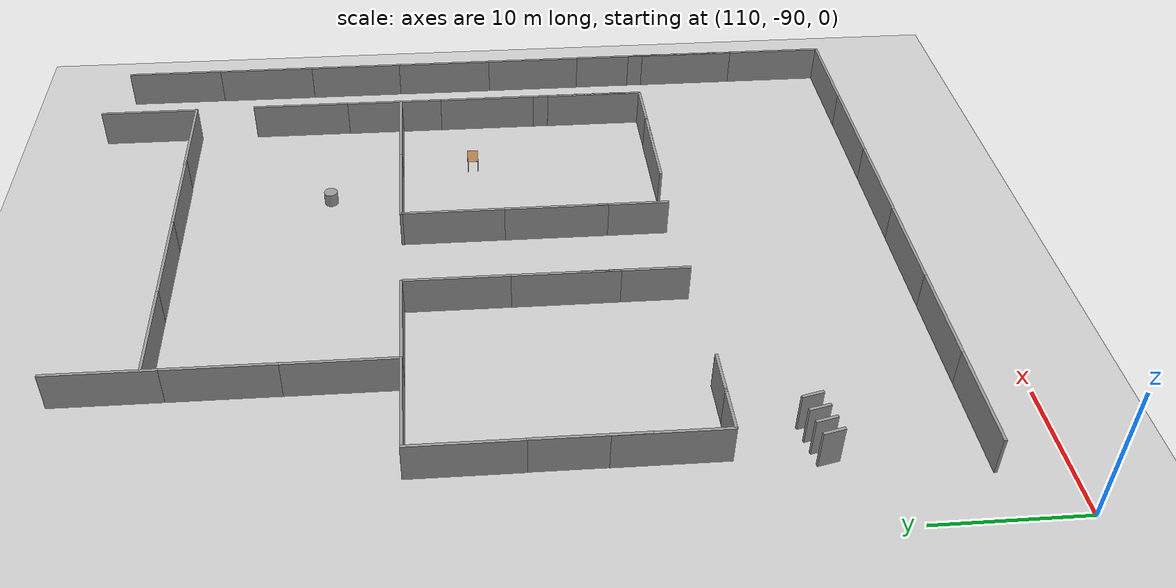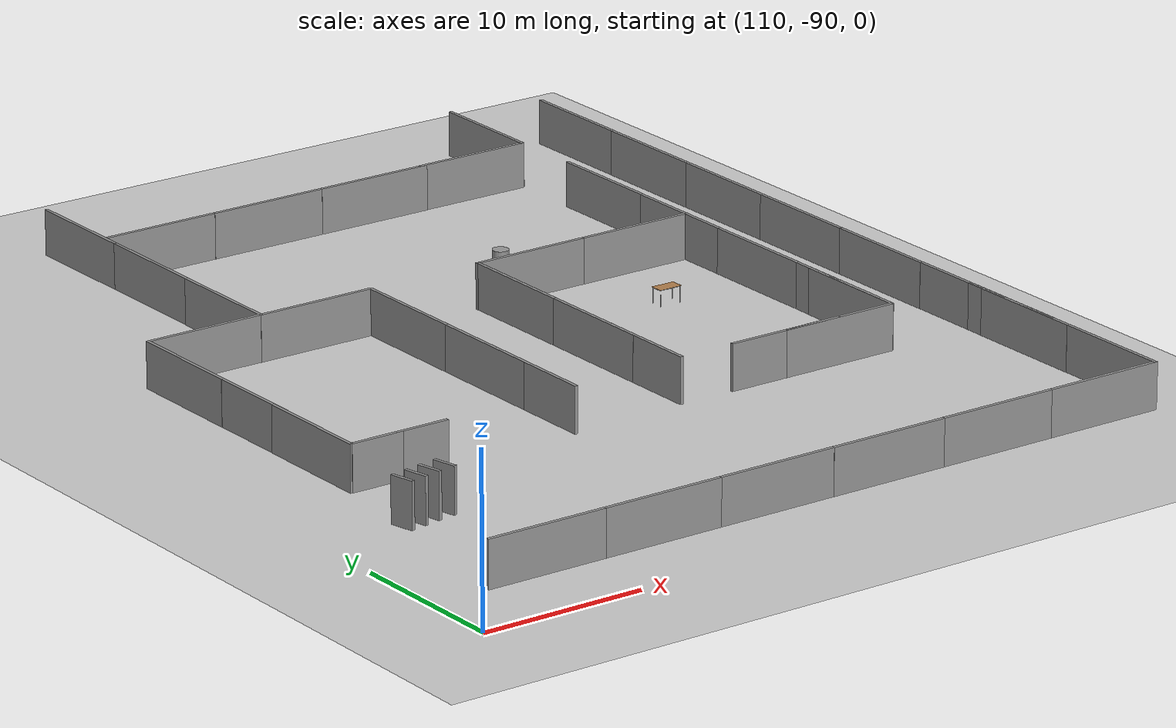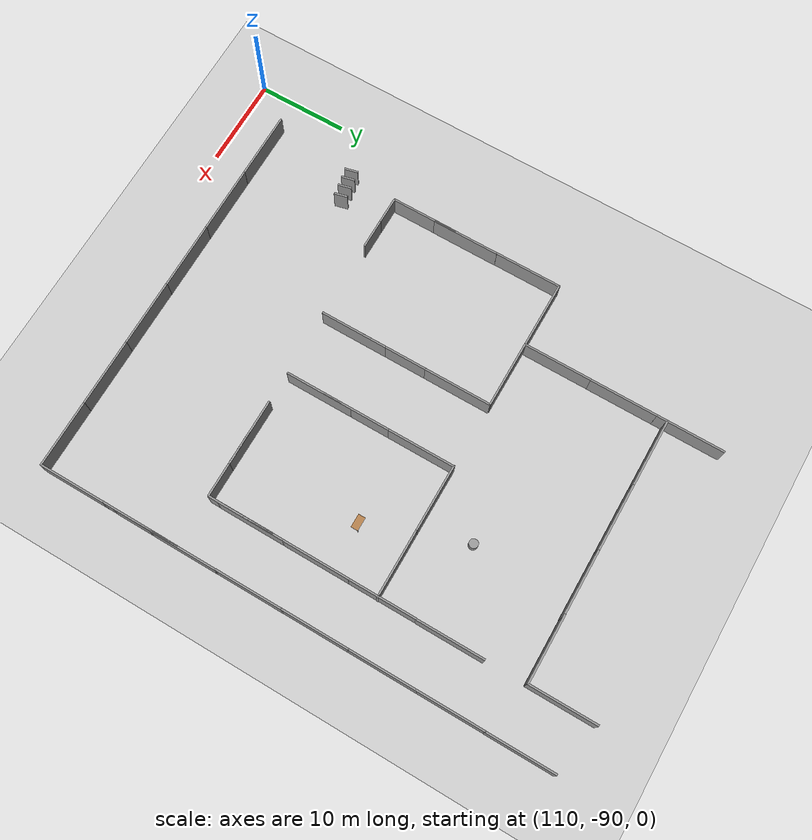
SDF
<sdf version="1.7">
 <world name="default">
  <model name="ground_plane">
   <static>1</static>
   <link name="link">
    <collision name="collision">
     <geometry><plane><normal>0 0 1</normal><size>100 100</size></plane></geometry>
     <surface>
      <contact><collide_bitmask>65535</collide_bitmask></contact>
      <friction><ode><mu>100</mu><mu2>50</mu2></ode></friction>
     </surface>
    </collision>
    <visual name="visual">
     <cast_shadows>0</cast_shadows>
     <geometry><plane><normal>0 0 1</normal><size>100 100</size></plane></geometry>
     <material>
      <script><uri>file://media/materials/scripts/gazebo.material</uri><name>Gazebo/Grey</name></script>
     </material>
    </visual>
   </link>
  </model>
  <model name="grey_wall_clone_2_clone_clone_clone_1_clone_clone_0_clone_1_clone_clone_clone_clone_clone_2_clone_clone_4_clone_1_clone">
   <static>1</static>
   <link name="link">
    <pose>0 0 1.4 0 -0 0</pose>
    <collision name="collision"><geometry><box><size>7.5 0.2 2.8</size></box></geometry></collision>
    <visual name="visual">
     <cast_shadows>0</cast_shadows>
     <geometry><box><size>7.5 0.2 2.8</size></box></geometry>
     <material>
      <script>
       <uri>model://grey_wall/materials/scripts</uri>
       <uri>model://grey_wall/materials/textures</uri>
       <name>vrc/grey_wall</name>
      </script>
     </material>
    </visual>
   </link>
   <pose>115.75 -53.734 0 0 0 -1.5708</pose>
  </model>
  <model name="grey_wall_clone_2_clone_clone_clone_1_clone_clone_0_clone_1_clone_clone_clone_clone_clone_2_clone_clone_4_clone_1_clone_0">
   <static>1</static>
   <link name="link">
    <pose>0 0 1.4 0 -0 0</pose>
    <collision name="collision"><geometry><box><size>7.5 0.2 2.8</size></box></geometry></collision>
    <visual name="visual">
     <cast_shadows>0</cast_shadows>
     <geometry><box><size>7.5 0.2 2.8</size></box></geometry>
     <material>
      <script>
       <uri>model://grey_wall/materials/scripts</uri>
       <uri>model://grey_wall/materials/textures</uri>
       <name>vrc/grey_wall</name>
      </script>
     </material>
    </visual>
   </link>
   <pose>115.771 -61.1567 0 0 0 -1.5708</pose>
  </model>
  <model name="grey_wall_clone_2_clone_clone_clone_1_clone_clone_0_clone_1_clone_clone_clone_clone_clone_2_clone_clone_4_clone_1_clone_1">
   <static>1</static>
   <link name="link">
    <pose>0 0 1.4 0 -0 0</pose>
    <collision name="collision"><geometry><box><size>7.5 0.2 2.8</size></box></geometry></collision>
    <visual name="visual">
     <cast_shadows>0</cast_shadows>
     <geometry><box><size>7.5 0.2 2.8</size></box></geometry>
     <material>
      <script>
       <uri>model://grey_wall/materials/scripts</uri>
       <uri>model://grey_wall/materials/textures</uri>
       <name>vrc/grey_wall</name>
      </script>
     </material>
    </visual>
   </link>
   <pose>115.755 -66.1449 0 0 0 -1.5708</pose>
  </model>
  <model name="fixed_half_clone_19_clone_0_clone">
   <link name="link">
    <pose>0 0 1.4 0 -0 0</pose>
    <inertial>
     <mass>1</mass>
     <inertia><ixx>1</ixx><ixy>0</ixy><ixz>0</ixz><iyy>1</iyy><iyz>0</iyz><izz>1</izz></inertia>
    </inertial>
    <visual name="visual">
     <cast_shadows>0</cast_shadows>
     <geometry><box><size>3.3 0.2 2.8</size></box></geometry>
     <material>
      <script>
       <uri>model://grey_wall/materials/scripts</uri>
       <uri>model://grey_wall/materials/textures</uri>
       <name>vrc/grey_wall</name>
      </script>
      <shader type="pixel"><normal_map>__default__</normal_map></shader>
      <ambient>1 1 1 1</ambient>
      <diffuse>1 1 1 1</diffuse>
      <specular>0 0 0 1</specular>
      <emissive>0 0 0 1</emissive>
     </material>
    </visual>
    <collision name="collision">
     <geometry><box><size>3.3 0.2 2.8</size></box></geometry>
     <surface>
      <friction>
       <ode><mu>1</mu><mu2>1</mu2><fdir1>0 0 0</fdir1><slip1>0</slip1><slip2>0</slip2></ode>
       <torsional>
        <coefficient>1</coefficient>
        <patch_radius>0</patch_radius>
        <surface_radius>0</surface_radius>
        <use_patch_radius>1</use_patch_radius>
        <ode><slip>0</slip></ode>
       </torsional>
      </friction>
      <bounce><restitution_coefficient>0</restitution_coefficient><threshold>1e+06</threshold></bounce>
      <contact>
       <collide_without_contact>0</collide_without_contact>
       <collide_without_contact_bitmask>1</collide_without_contact_bitmask>
       <collide_bitmask>1</collide_bitmask>
       <ode>
        <soft_cfm>0</soft_cfm>
        <soft_erp>0.2</soft_erp>
        <kp>1e+13</kp>
        <kd>1</kd>
        <max_vel>0.01</max_vel>
        <min_depth>0</min_depth>
       </ode>
       <bullet>
        <split_impulse>1</split_impulse>
        <split_impulse_penetration_threshold>-0.01</split_impulse_penetration_threshold>
        <soft_cfm>0</soft_cfm>
        <soft_erp>0.2</soft_erp>
        <kp>1e+13</kp>
        <kd>1</kd>
       </bullet>
      </contact>
     </surface>
    </collision>
   </link>
   <static>1</static>
   <pose>117.419 -69.8253 0 0 -0 3.14159</pose>
  </model>
  <model name="grey_wall_clone_2_clone_clone_clone_1_clone_clone_0_clone_1_clone_clone_clone_clone_clone_2_clone_clone_4_clone_1_clone_clone_clone">
   <static>1</static>
   <link name="link">
    <pose>0 0 1.4 0 -0 0</pose>
    <collision name="collision"><geometry><box><size>7.5 0.2 2.8</size></box></geometry></collision>
    <visual name="visual">
     <cast_shadows>0</cast_shadows>
     <geometry><box><size>7.5 0.2 2.8</size></box></geometry>
     <material>
      <script>
       <uri>model://grey_wall/materials/scripts</uri>
       <uri>model://grey_wall/materials/textures</uri>
       <name>vrc/grey_wall</name>
      </script>
     </material>
    </visual>
   </link>
   <pose>123.178 -46.2467 0 0 0 -1.5708</pose>
  </model>
  <model name="grey_wall_clone_2_clone_clone_clone_1_clone_clone_0_clone_1_clone_clone_clone_clone_clone_2_clone_clone_4_clone_1_clone_clone_clone_0">
   <static>1</static>
   <link name="link">
    <pose>0 0 1.4 0 -0 0</pose>
    <collision name="collision"><geometry><box><size>7.5 0.2 2.8</size></box></geometry></collision>
    <visual name="visual">
     <cast_shadows>0</cast_shadows>
     <geometry><box><size>7.5 0.2 2.8</size></box></geometry>
     <material>
      <script>
       <uri>model://grey_wall/materials/scripts</uri>
       <uri>model://grey_wall/materials/textures</uri>
       <name>vrc/grey_wall</name>
      </script>
     </material>
    </visual>
   </link>
   <pose>123.188 -38.8196 0 0 0 -1.5708</pose>
  </model>
  <model name="grey_wall_clone_2_clone_clone_clone_1_clone_clone_0_clone_1_clone_clone_clone_clone_clone_2_clone_clone_4_clone_1_clone_clone_clone_1">
   <static>1</static>
   <link name="link">
    <pose>0 0 1.4 0 -0 0</pose>
    <collision name="collision"><geometry><box><size>7.5 0.2 2.8</size></box></geometry></collision>
    <visual name="visual">
     <cast_shadows>0</cast_shadows>
     <geometry><box><size>7.5 0.2 2.8</size></box></geometry>
     <material>
      <script>
       <uri>model://grey_wall/materials/scripts</uri>
       <uri>model://grey_wall/materials/textures</uri>
       <name>vrc/grey_wall</name>
      </script>
     </material>
    </visual>
   </link>
   <pose>123.189 -31.3968 0 0 0 -1.5708</pose>
  </model>
  <model name="grey_wall_clone_1_clone_2_clone_clone_clone_clone_clone_clone_clone_3_clone_0_clone_0_clone_4">
   <static>1</static>
   <link name="link">
    <pose>0 0 1.4 0 -0 0</pose>
    <collision name="collision"><geometry><box><size>7.5 0.2 2.8</size></box></geometry></collision>
    <visual name="visual">
     <cast_shadows>0</cast_shadows>
     <geometry><box><size>7.5 0.2 2.8</size></box></geometry>
     <material>
      <script>
       <uri>model://grey_wall/materials/scripts</uri>
       <uri>model://grey_wall/materials/textures</uri>
       <name>vrc/grey_wall</name>
      </script>
     </material>
    </visual>
   </link>
   <pose>126.968 -33.9706 0 0 -0 0</pose>
  </model>
  <model name="grey_wall_clone_1_clone_2_clone_clone_clone_clone_clone_clone_clone_3_clone_0_clone_0_clone_5">
   <static>1</static>
   <link name="link">
    <pose>0 0 1.4 0 -0 0</pose>
    <collision name="collision"><geometry><box><size>7.5 0.2 2.8</size></box></geometry></collision>
    <visual name="visual">
     <cast_shadows>0</cast_shadows>
     <geometry><box><size>7.5 0.2 2.8</size></box></geometry>
     <material>
      <script>
       <uri>model://grey_wall/materials/scripts</uri>
       <uri>model://grey_wall/materials/textures</uri>
       <name>vrc/grey_wall</name>
      </script>
     </material>
    </visual>
   </link>
   <pose>134.427 -33.9746 0 0 -0 0</pose>
  </model>
  <model name="grey_wall_clone_1_clone_2_clone_clone_clone_clone_clone_clone_clone_3_clone_0_clone_0_clone_6">
   <static>1</static>
   <link name="link">
    <pose>0 0 1.4 0 -0 0</pose>
    <collision name="collision"><geometry><box><size>7.5 0.2 2.8</size></box></geometry></collision>
    <visual name="visual">
     <cast_shadows>0</cast_shadows>
     <geometry><box><size>7.5 0.2 2.8</size></box></geometry>
     <material>
      <script>
       <uri>model://grey_wall/materials/scripts</uri>
       <uri>model://grey_wall/materials/textures</uri>
       <name>vrc/grey_wall</name>
      </script>
     </material>
    </visual>
   </link>
   <pose>141.93 -33.9769 0 0 -0 0</pose>
  </model>
  <model name="grey_wall_clone_2_clone_clone_clone_1_clone_clone_0_clone_1_clone_clone_clone_clone_clone_2_clone_clone_4_clone_1_clone_clone_clone_3_clone_3">
   <static>1</static>
   <link name="link">
    <pose>0 0 1.4 0 -0 0</pose>
    <collision name="collision"><geometry><box><size>7.5 0.2 2.8</size></box></geometry></collision>
    <visual name="visual">
     <cast_shadows>0</cast_shadows>
     <geometry><box><size>7.5 0.2 2.8</size></box></geometry>
     <material>
      <script>
       <uri>model://grey_wall/materials/scripts</uri>
       <uri>model://grey_wall/materials/textures</uri>
       <name>vrc/grey_wall</name>
      </script>
     </material>
    </visual>
   </link>
   <pose>152.691 -30.2729 0 0 0 -1.5708</pose>
  </model>
  <model name="grey_wall_clone_1_clone_2_clone_clone_clone_clone_clone_clone_clone_3_clone_0_clone_0_clone_6_clone">
   <static>1</static>
   <link name="link">
    <pose>0 0 1.4 0 -0 0</pose>
    <collision name="collision"><geometry><box><size>7.5 0.2 2.8</size></box></geometry></collision>
    <visual name="visual">
     <cast_shadows>0</cast_shadows>
     <geometry><box><size>7.5 0.2 2.8</size></box></geometry>
     <material>
      <script>
       <uri>model://grey_wall/materials/scripts</uri>
       <uri>model://grey_wall/materials/textures</uri>
       <name>vrc/grey_wall</name>
      </script>
     </material>
    </visual>
   </link>
   <pose>148.988 -33.9462 0 0 -0 0</pose>
  </model>
  <model name="grey_wall_clone_2_clone_clone_clone_1_clone_clone_0_clone_1_clone_clone_clone_clone_clone_2_clone_clone_4_clone_1_clone_clone_clone_3_clone_1_clone_2">
   <static>1</static>
   <link name="link">
    <pose>0 0 1.4 0 -0 0</pose>
    <collision name="collision"><geometry><box><size>7.5 0.2 2.8</size></box></geometry></collision>
    <visual name="visual">
     <cast_shadows>0</cast_shadows>
     <geometry><box><size>7.5 0.2 2.8</size></box></geometry>
     <material>
      <script>
       <uri>model://grey_wall/materials/scripts</uri>
       <uri>model://grey_wall/materials/textures</uri>
       <name>vrc/grey_wall</name>
      </script>
     </material>
    </visual>
   </link>
   <pose>158.446 -31.5945 0 0 0 -1.5708</pose>
  </model>
  <model name="grey_wall_clone_2_clone_clone_clone_1_clone_clone_0_clone_1_clone_clone_clone_clone_clone_2_clone_clone_4_clone_1_clone_clone_clone_3_clone_1_clone_3">
   <static>1</static>
   <link name="link">
    <pose>0 0 1.4 0 -0 0</pose>
    <collision name="collision"><geometry><box><size>7.5 0.2 2.8</size></box></geometry></collision>
    <visual name="visual">
     <cast_shadows>0</cast_shadows>
     <geometry><box><size>7.5 0.2 2.8</size></box></geometry>
     <material>
      <script>
       <uri>model://grey_wall/materials/scripts</uri>
       <uri>model://grey_wall/materials/textures</uri>
       <name>vrc/grey_wall</name>
      </script>
     </material>
    </visual>
   </link>
   <pose>158.431 -38.9856 0 0 0 -1.5708</pose>
  </model>
  <model name="grey_wall_clone_2_clone_clone_clone_1_clone_clone_0_clone_1_clone_clone_clone_clone_clone_2_clone_clone_4_clone_1_clone_clone_clone_3_clone_1_clone_4">
   <static>1</static>
   <link name="link">
    <pose>0 0 1.4 0 -0 0</pose>
    <collision name="collision"><geometry><box><size>7.5 0.2 2.8</size></box></geometry></collision>
    <visual name="visual">
     <cast_shadows>0</cast_shadows>
     <geometry><box><size>7.5 0.2 2.8</size></box></geometry>
     <material>
      <script>
       <uri>model://grey_wall/materials/scripts</uri>
       <uri>model://grey_wall/materials/textures</uri>
       <name>vrc/grey_wall</name>
      </script>
     </material>
    </visual>
   </link>
   <pose>152.79 -42.1886 0 0 0 -1.5708</pose>
  </model>
  <model name="grey_wall_clone_2_clone_clone_clone_1_clone_clone_0_clone_1_clone_clone_clone_clone_clone_2_clone_clone_4_clone_1_clone_clone_clone_3_clone_1_clone_4_clone">
   <static>1</static>
   <link name="link">
    <pose>0 0 1.4 0 -0 0</pose>
    <collision name="collision"><geometry><box><size>7.5 0.2 2.8</size></box></geometry></collision>
    <visual name="visual">
     <cast_shadows>0</cast_shadows>
     <geometry><box><size>7.5 0.2 2.8</size></box></geometry>
     <material>
      <script>
       <uri>model://grey_wall/materials/scripts</uri>
       <uri>model://grey_wall/materials/textures</uri>
       <name>vrc/grey_wall</name>
      </script>
     </material>
    </visual>
   </link>
   <pose>152.764 -49.6213 0 0 0 -1.5708</pose>
  </model>
  <model name="grey_wall_clone_1_clone_2_clone_clone_clone_clone_clone_clone_clone_3_clone_0_clone_0_clone_5_clone_2_clone">
   <static>1</static>
   <link name="link">
    <pose>0 0 1.4 0 -0 0</pose>
    <collision name="collision"><geometry><box><size>7.5 0.2 2.8</size></box></geometry></collision>
    <visual name="visual">
     <cast_shadows>0</cast_shadows>
     <geometry><box><size>7.5 0.2 2.8</size></box></geometry>
     <material>
      <script>
       <uri>model://grey_wall/materials/scripts</uri>
       <uri>model://grey_wall/materials/textures</uri>
       <name>vrc/grey_wall</name>
      </script>
     </material>
    </visual>
   </link>
   <pose>126.875 -50.1014 0 0 -0 0</pose>
  </model>
  <model name="grey_wall_clone_1_clone_2_clone_clone_clone_clone_clone_clone_clone_3_clone_0_clone_0_clone_5_clone_2_clone_1">
   <static>1</static>
   <link name="link">
    <pose>0 0 1.4 0 -0 0</pose>
    <collision name="collision"><geometry><box><size>7.5 0.2 2.8</size></box></geometry></collision>
    <visual name="visual">
     <cast_shadows>0</cast_shadows>
     <geometry><box><size>7.5 0.2 2.8</size></box></geometry>
     <material>
      <script>
       <uri>model://grey_wall/materials/scripts</uri>
       <uri>model://grey_wall/materials/textures</uri>
       <name>vrc/grey_wall</name>
      </script>
     </material>
    </visual>
   </link>
   <pose>141.647 -50.1203 0 0 -0 0</pose>
  </model>
  <model name="grey_wall_clone_1_clone_2_clone_clone_clone_clone_clone_clone_clone_3_clone_0_clone_0_clone_5_clone_2_clone_2">
   <static>1</static>
   <link name="link">
    <pose>0 0 1.4 0 -0 0</pose>
    <collision name="collision"><geometry><box><size>7.5 0.2 2.8</size></box></geometry></collision>
    <visual name="visual">
     <cast_shadows>0</cast_shadows>
     <geometry><box><size>7.5 0.2 2.8</size></box></geometry>
     <material>
      <script>
       <uri>model://grey_wall/materials/scripts</uri>
       <uri>model://grey_wall/materials/textures</uri>
       <name>vrc/grey_wall</name>
      </script>
     </material>
    </visual>
   </link>
   <pose>149.157 -50.1207 0 0 -0 0</pose>
  </model>
  <model name="grey_wall_clone_1_clone_2_clone_clone_clone_clone_clone_clone_clone_clone_clone_3_clone_0_clone_1_clone_clone_0_clone_0_clone_1_clone_clone">
   <static>1</static>
   <link name="link">
    <pose>0 0 1.4 0 -0 0</pose>
    <collision name="collision"><geometry><box><size>7.5 0.2 2.8</size></box></geometry></collision>
    <visual name="visual">
     <cast_shadows>0</cast_shadows>
     <geometry><box><size>7.5 0.2 2.8</size></box></geometry>
     <material>
      <script>
       <uri>model://grey_wall/materials/scripts</uri>
       <uri>model://grey_wall/materials/textures</uri>
       <name>vrc/grey_wall</name>
      </script>
     </material>
    </visual>
   </link>
   <pose>119.5 -50.0884 0 0 -0 0</pose>
  </model>
  <model name="grey_wall_clone_2_clone_clone_clone_1_clone_clone_0_clone_1_clone_clone_clone_clone_clone_2_clone_clone_4_clone_1_clone_clone">
   <static>1</static>
   <link name="link">
    <pose>0 0 1.4 0 -0 0</pose>
    <collision name="collision"><geometry><box><size>7.5 0.2 2.8</size></box></geometry></collision>
    <visual name="visual">
     <cast_shadows>0</cast_shadows>
     <geometry><box><size>7.5 0.2 2.8</size></box></geometry>
     <material>
      <script>
       <uri>model://grey_wall/materials/scripts</uri>
       <uri>model://grey_wall/materials/textures</uri>
       <name>vrc/grey_wall</name>
      </script>
     </material>
    </visual>
   </link>
   <pose>130.624 -53.8232 0 0 0 -1.5708</pose>
  </model>
  <model name="grey_wall_clone_2_clone_clone_clone_1_clone_clone_0_clone_1_clone_clone_clone_clone_clone_2_clone_clone_4_clone_1_clone_clone_0">
   <static>1</static>
   <link name="link">
    <pose>0 0 1.4 0 -0 0</pose>
    <collision name="collision"><geometry><box><size>7.5 0.2 2.8</size></box></geometry></collision>
    <visual name="visual">
     <cast_shadows>0</cast_shadows>
     <geometry><box><size>7.5 0.2 2.8</size></box></geometry>
     <material>
      <script>
       <uri>model://grey_wall/materials/scripts</uri>
       <uri>model://grey_wall/materials/textures</uri>
       <name>vrc/grey_wall</name>
      </script>
     </material>
    </visual>
   </link>
   <pose>130.62 -61.2465 0 0 0 -1.5708</pose>
  </model>
  <model name="grey_wall_clone_2_clone_clone_clone_1_clone_clone_0_clone_1_clone_clone_clone_clone_clone_2_clone_clone_4_clone_1_clone_clone_1">
   <static>1</static>
   <link name="link">
    <pose>0 0 1.4 0 -0 0</pose>
    <collision name="collision"><geometry><box><size>7.5 0.2 2.8</size></box></geometry></collision>
    <visual name="visual">
     <cast_shadows>0</cast_shadows>
     <geometry><box><size>7.5 0.2 2.8</size></box></geometry>
     <material>
      <script>
       <uri>model://grey_wall/materials/scripts</uri>
       <uri>model://grey_wall/materials/textures</uri>
       <name>vrc/grey_wall</name>
      </script>
     </material>
    </visual>
   </link>
   <pose>130.625 -65.9847 0 0 0 -1.5708</pose>
  </model>
  <model name="grey_wall_clone_2_clone_clone_clone_1_clone_clone_0_clone_1_clone_clone_clone_clone_clone_2_clone_clone_4_clone_1_clone_clone_2">
   <static>1</static>
   <link name="link">
    <pose>0 0 1.4 0 -0 0</pose>
    <collision name="collision"><geometry><box><size>7.5 0.2 2.8</size></box></geometry></collision>
    <visual name="visual">
     <cast_shadows>0</cast_shadows>
     <geometry><box><size>7.5 0.2 2.8</size></box></geometry>
     <material>
      <script>
       <uri>model://grey_wall/materials/scripts</uri>
       <uri>model://grey_wall/materials/textures</uri>
       <name>vrc/grey_wall</name>
      </script>
     </material>
    </visual>
   </link>
   <pose>152.753 -57.0513 0 0 0 -1.5708</pose>
  </model>
  <model name="grey_wall_clone_2_clone_clone_clone_1_clone_clone_0_clone_1_clone_clone_clone_clone_clone_2_clone_clone_4_clone_1_clone_clone_3">
   <static>1</static>
   <link name="link">
    <pose>0 0 1.4 0 -0 0</pose>
    <collision name="collision"><geometry><box><size>7.5 0.2 2.8</size></box></geometry></collision>
    <visual name="visual">
     <cast_shadows>0</cast_shadows>
     <geometry><box><size>7.5 0.2 2.8</size></box></geometry>
     <material>
      <script>
       <uri>model://grey_wall/materials/scripts</uri>
       <uri>model://grey_wall/materials/textures</uri>
       <name>vrc/grey_wall</name>
      </script>
     </material>
    </visual>
   </link>
   <pose>138.017 -53.8348 0 0 0 -1.5708</pose>
  </model>
  <model name="grey_wall_clone_2_clone_clone_clone_1_clone_clone_0_clone_1_clone_clone_clone_clone_clone_2_clone_clone_4_clone_1_clone_clone_4">
   <static>1</static>
   <link name="link">
    <pose>0 0 1.4 0 -0 0</pose>
    <collision name="collision"><geometry><box><size>7.5 0.2 2.8</size></box></geometry></collision>
    <visual name="visual">
     <cast_shadows>0</cast_shadows>
     <geometry><box><size>7.5 0.2 2.8</size></box></geometry>
     <material>
      <script>
       <uri>model://grey_wall/materials/scripts</uri>
       <uri>model://grey_wall/materials/textures</uri>
       <name>vrc/grey_wall</name>
      </script>
     </material>
    </visual>
   </link>
   <pose>138.016 -61.2849 0 0 0 -1.5708</pose>
  </model>
  <model name="grey_wall_clone_2_clone_clone_clone_1_clone_clone_0_clone_1_clone_clone_clone_clone_clone_2_clone_clone_4_clone_1_clone_clone_5">
   <static>1</static>
   <link name="link">
    <pose>0 0 1.4 0 -0 0</pose>
    <collision name="collision"><geometry><box><size>7.5 0.2 2.8</size></box></geometry></collision>
    <visual name="visual">
     <cast_shadows>0</cast_shadows>
     <geometry><box><size>7.5 0.2 2.8</size></box></geometry>
     <material>
      <script>
       <uri>model://grey_wall/materials/scripts</uri>
       <uri>model://grey_wall/materials/textures</uri>
       <name>vrc/grey_wall</name>
      </script>
     </material>
    </visual>
   </link>
   <pose>138.018 -65.6616 0 0 0 -1.5708</pose>
  </model>
  <model name="grey_wall_clone_2_clone_clone_clone_1_clone_clone_0_clone_1_clone_clone_clone_clone_clone_2_clone_clone_4_clone_1_clone_clone_2_clone">
   <static>1</static>
   <link name="link">
    <pose>0 0 1.4 0 -0 0</pose>
    <collision name="collision"><geometry><box><size>7.5 0.2 2.8</size></box></geometry></collision>
    <visual name="visual">
     <cast_shadows>0</cast_shadows>
     <geometry><box><size>7.5 0.2 2.8</size></box></geometry>
     <material>
      <script>
       <uri>model://grey_wall/materials/scripts</uri>
       <uri>model://grey_wall/materials/textures</uri>
       <name>vrc/grey_wall</name>
      </script>
     </material>
    </visual>
   </link>
   <pose>152.745 -64.487 0 0 0 -1.5708</pose>
  </model>
  <model name="grey_wall_clone_1_clone_2_clone_clone_clone_clone_clone_clone_clone_3_clone_0_clone_0_clone_5_clone_2_clone_2_clone">
   <static>1</static>
   <link name="link">
    <pose>0 0 1.4 0 -0 0</pose>
    <collision name="collision"><geometry><box><size>7.5 0.2 2.8</size></box></geometry></collision>
    <visual name="visual">
     <cast_shadows>0</cast_shadows>
     <geometry><box><size>7.5 0.2 2.8</size></box></geometry>
     <material>
      <script>
       <uri>model://grey_wall/materials/scripts</uri>
       <uri>model://grey_wall/materials/textures</uri>
       <name>vrc/grey_wall</name>
      </script>
     </material>
    </visual>
   </link>
   <pose>149.004 -69.3711 0 0 -0 0</pose>
  </model>
  <model name="grey_wall_clone_2_clone_clone_clone_1_clone_clone_0_clone_1_clone_clone_clone_clone_clone_2_clone_clone_4_clone_1_clone_clone_2_clone_clone">
   <static>1</static>
   <link name="link">
    <pose>0 0 1.4 0 -0 0</pose>
    <collision name="collision"><geometry><box><size>7.5 0.2 2.8</size></box></geometry></collision>
    <visual name="visual">
     <cast_shadows>0</cast_shadows>
     <geometry><box><size>7.5 0.2 2.8</size></box></geometry>
     <material>
      <script>
       <uri>model://grey_wall/materials/scripts</uri>
       <uri>model://grey_wall/materials/textures</uri>
       <name>vrc/grey_wall</name>
      </script>
     </material>
    </visual>
   </link>
   <pose>152.726 -65.6676 0 0 0 -1.5708</pose>
  </model>
  <model name="grey_wall_clone_1_clone_2_clone_clone_clone_clone_clone_clone_clone_3_clone_0_clone_0_clone_5_clone_2_clone_2_clone_clone">
   <static>1</static>
   <link name="link">
    <pose>0 0 1.4 0 -0 0</pose>
    <collision name="collision"><geometry><box><size>7.5 0.2 2.8</size></box></geometry></collision>
    <visual name="visual">
     <cast_shadows>0</cast_shadows>
     <geometry><box><size>7.5 0.2 2.8</size></box></geometry>
     <material>
      <script>
       <uri>model://grey_wall/materials/scripts</uri>
       <uri>model://grey_wall/materials/textures</uri>
       <name>vrc/grey_wall</name>
      </script>
     </material>
    </visual>
   </link>
   <pose>145.241 -69.3636 0 0 -0 0</pose>
  </model>
  <model name="grey_wall_clone_2_clone_clone_clone_1_clone_clone_0_clone_1_clone_clone_clone_clone_clone_2_clone_clone_4_clone_1_clone_clone_clone_3_clone_1_clone_3_clone">
   <static>1</static>
   <link name="link">
    <pose>0 0 1.4 0 -0 0</pose>
    <collision name="collision"><geometry><box><size>7.5 0.2 2.8</size></box></geometry></collision>
    <visual name="visual">
     <cast_shadows>0</cast_shadows>
     <geometry><box><size>7.5 0.2 2.8</size></box></geometry>
     <material>
      <script>
       <uri>model://grey_wall/materials/scripts</uri>
       <uri>model://grey_wall/materials/textures</uri>
       <name>vrc/grey_wall</name>
      </script>
     </material>
    </visual>
   </link>
   <pose>158.433 -46.3027 0 0 0 -1.5708</pose>
  </model>
  <model name="grey_wall_clone_2_clone_clone_clone_1_clone_clone_0_clone_1_clone_clone_clone_clone_clone_2_clone_clone_4_clone_1_clone_clone_clone_3_clone_1_clone_3_clone_0">
   <static>1</static>
   <link name="link">
    <pose>0 0 1.4 0 -0 0</pose>
    <collision name="collision"><geometry><box><size>7.5 0.2 2.8</size></box></geometry></collision>
    <visual name="visual">
     <cast_shadows>0</cast_shadows>
     <geometry><box><size>7.5 0.2 2.8</size></box></geometry>
     <material>
      <script>
       <uri>model://grey_wall/materials/scripts</uri>
       <uri>model://grey_wall/materials/textures</uri>
       <name>vrc/grey_wall</name>
      </script>
     </material>
    </visual>
   </link>
   <pose>158.429 -53.7228 0 0 0 -1.5708</pose>
  </model>
  <model name="grey_wall_clone_2_clone_clone_clone_1_clone_clone_0_clone_1_clone_clone_clone_clone_clone_2_clone_clone_4_clone_1_clone_clone_clone_3_clone_1_clone_3_clone_1">
   <static>1</static>
   <link name="link">
    <pose>0 0 1.4 0 -0 0</pose>
    <collision name="collision"><geometry><box><size>7.5 0.2 2.8</size></box></geometry></collision>
    <visual name="visual">
     <cast_shadows>0</cast_shadows>
     <geometry><box><size>7.5 0.2 2.8</size></box></geometry>
     <material>
      <script>
       <uri>model://grey_wall/materials/scripts</uri>
       <uri>model://grey_wall/materials/textures</uri>
       <name>vrc/grey_wall</name>
      </script>
     </material>
    </visual>
   </link>
   <pose>158.434 -61.1365 0 0 0 -1.5708</pose>
  </model>
  <model name="grey_wall_clone_2_clone_clone_clone_1_clone_clone_0_clone_1_clone_clone_clone_clone_clone_2_clone_clone_4_clone_1_clone_clone_clone_3_clone_1_clone_3_clone_2">
   <static>1</static>
   <link name="link">
    <pose>0 0 1.4 0 -0 0</pose>
    <collision name="collision"><geometry><box><size>7.5 0.2 2.8</size></box></geometry></collision>
    <visual name="visual">
     <cast_shadows>0</cast_shadows>
     <geometry><box><size>7.5 0.2 2.8</size></box></geometry>
     <material>
      <script>
       <uri>model://grey_wall/materials/scripts</uri>
       <uri>model://grey_wall/materials/textures</uri>
       <name>vrc/grey_wall</name>
      </script>
     </material>
    </visual>
   </link>
   <pose>158.451 -68.6041 0 0 0 -1.5708</pose>
  </model>
  <model name="grey_wall_clone_2_clone_clone_clone_1_clone_clone_0_clone_1_clone_clone_clone_clone_clone_2_clone_clone_4_clone_1_clone_clone_clone_3_clone_1_clone_3_clone_3">
   <static>1</static>
   <link name="link">
    <pose>0 0 1.4 0 -0 0</pose>
    <collision name="collision"><geometry><box><size>7.5 0.2 2.8</size></box></geometry></collision>
    <visual name="visual">
     <cast_shadows>0</cast_shadows>
     <geometry><box><size>7.5 0.2 2.8</size></box></geometry>
     <material>
      <script>
       <uri>model://grey_wall/materials/scripts</uri>
       <uri>model://grey_wall/materials/textures</uri>
       <name>vrc/grey_wall</name>
      </script>
     </material>
    </visual>
   </link>
   <pose>158.446 -72.9808 0 0 0 -1.5708</pose>
  </model>
  <model name="grey_wall_clone_2_clone_clone_clone_1_clone_clone_0_clone_1_clone_clone_clone_clone_clone_2_clone_clone_4_clone_1_clone_clone_clone_3_clone_1_clone_3_clone_3_clone">
   <static>1</static>
   <link name="link">
    <pose>0 0 1.4 0 -0 0</pose>
    <collision name="collision"><geometry><box><size>7.5 0.2 2.8</size></box></geometry></collision>
    <visual name="visual">
     <cast_shadows>0</cast_shadows>
     <geometry><box><size>7.5 0.2 2.8</size></box></geometry>
     <material>
      <script>
       <uri>model://grey_wall/materials/scripts</uri>
       <uri>model://grey_wall/materials/textures</uri>
       <name>vrc/grey_wall</name>
      </script>
     </material>
    </visual>
   </link>
   <pose>158.429 -74.1625 0 0 0 -1.5708</pose>
  </model>
  <model name="fixed_half_clone_19_clone_0_clone_clone">
   <link name="link">
    <pose>0 0 1.4 0 -0 0</pose>
    <inertial>
     <mass>1</mass>
     <inertia><ixx>1</ixx><ixy>0</ixy><ixz>0</ixz><iyy>1</iyy><iyz>0</iyz><izz>1</izz></inertia>
    </inertial>
    <visual name="visual">
     <cast_shadows>0</cast_shadows>
     <geometry><box><size>3.3 0.2 2.8</size></box></geometry>
     <material>
      <script>
       <uri>model://grey_wall/materials/scripts</uri>
       <uri>model://grey_wall/materials/textures</uri>
       <name>vrc/grey_wall</name>
      </script>
      <shader type="pixel"><normal_map>__default__</normal_map></shader>
      <ambient>1 1 1 1</ambient>
      <diffuse>1 1 1 1</diffuse>
      <specular>0 0 0 1</specular>
      <emissive>0 0 0 1</emissive>
     </material>
    </visual>
    <collision name="collision">
     <geometry><box><size>3.3 0.2 2.8</size></box></geometry>
     <surface>
      <friction>
       <ode><mu>1</mu><mu2>1</mu2><fdir1>0 0 0</fdir1><slip1>0</slip1><slip2>0</slip2></ode>
       <torsional>
        <coefficient>1</coefficient>
        <patch_radius>0</patch_radius>
        <surface_radius>0</surface_radius>
        <use_patch_radius>1</use_patch_radius>
        <ode><slip>0</slip></ode>
       </torsional>
      </friction>
      <bounce><restitution_coefficient>0</restitution_coefficient><threshold>1e+06</threshold></bounce>
      <contact>
       <collide_without_contact>0</collide_without_contact>
       <collide_without_contact_bitmask>1</collide_without_contact_bitmask>
       <collide_bitmask>1</collide_bitmask>
       <ode>
        <soft_cfm>0</soft_cfm>
        <soft_erp>0.2</soft_erp>
        <kp>1e+13</kp>
        <kd>1</kd>
        <max_vel>0.01</max_vel>
        <min_depth>0</min_depth>
       </ode>
       <bullet>
        <split_impulse>1</split_impulse>
        <split_impulse_penetration_threshold>-0.01</split_impulse_penetration_threshold>
        <soft_cfm>0</soft_cfm>
        <soft_erp>0.2</soft_erp>
        <kp>1e+13</kp>
        <kd>1</kd>
       </bullet>
      </contact>
     </surface>
    </collision>
   </link>
   <static>1</static>
   <pose>120.391 -69.8234 0 0 -0 3.14159</pose>
  </model>
  <model name="table_clone_clone">
   <static>1</static>
   <link name="link">
    <collision name="surface">
     <pose>0 0 1 0 -0 0</pose>
     <geometry><box><size>1.5 0.8 0.03</size></box></geometry>
     <surface><friction><ode><mu>0.6</mu><mu2>0.6</mu2></ode></friction></surface>
    </collision>
    <visual name="visual1">
     <pose>0 0 1 0 -0 0</pose>
     <geometry><box><size>1.5 0.8 0.03</size></box></geometry>
     <material>
      <script><uri>file://media/materials/scripts/gazebo.material</uri><name>Gazebo/Wood</name></script>
     </material>
    </visual>
    <collision name="front_left_leg">
     <pose>0.68 0.38 0.5 0 -0 0</pose>
     <geometry><cylinder><radius>0.02</radius><length>1</length></cylinder></geometry>
    </collision>
    <visual name="front_left_leg">
     <pose>0.68 0.38 0.5 0 -0 0</pose>
     <geometry><cylinder><radius>0.02</radius><length>1</length></cylinder></geometry>
     <material>
      <script><uri>file://media/materials/scripts/gazebo.material</uri><name>Gazebo/Grey</name></script>
     </material>
    </visual>
    <collision name="front_right_leg">
     <pose>0.68 -0.38 0.5 0 -0 0</pose>
     <geometry><cylinder><radius>0.02</radius><length>1</length></cylinder></geometry>
    </collision>
    <visual name="front_right_leg">
     <pose>0.68 -0.38 0.5 0 -0 0</pose>
     <geometry><cylinder><radius>0.02</radius><length>1</length></cylinder></geometry>
     <material>
      <script><uri>file://media/materials/scripts/gazebo.material</uri><name>Gazebo/Grey</name></script>
     </material>
    </visual>
    <collision name="back_right_leg">
     <pose>-0.68 -0.38 0.5 0 -0 0</pose>
     <geometry><cylinder><radius>0.02</radius><length>1</length></cylinder></geometry>
    </collision>
    <visual name="back_right_leg">
     <pose>-0.68 -0.38 0.5 0 -0 0</pose>
     <geometry><cylinder><radius>0.02</radius><length>1</length></cylinder></geometry>
     <material>
      <script><uri>file://media/materials/scripts/gazebo.material</uri><name>Gazebo/Grey</name></script>
     </material>
    </visual>
    <collision name="back_left_leg">
     <pose>-0.68 0.38 0.5 0 -0 0</pose>
     <geometry><cylinder><radius>0.02</radius><length>1</length></cylinder></geometry>
    </collision>
    <visual name="back_left_leg">
     <pose>-0.68 0.38 0.5 0 -0 0</pose>
     <geometry><cylinder><radius>0.02</radius><length>1</length></cylinder></geometry>
     <material>
      <script><uri>file://media/materials/scripts/gazebo.material</uri><name>Gazebo/Grey</name></script>
     </material>
    </visual>
   </link>
   <pose>147.305 -55.593 0 0 -0 0</pose>
  </model>
  <model name="unit_cylinder_3">
   <pose>143.388 -44.7526 0.499993 -1e-06 -0 -0</pose>
   <link name="link">
    <inertial>
     <mass>1</mass>
     <inertia><ixx>0.145833</ixx><ixy>0</ixy><ixz>0</ixz><iyy>0.145833</iyy><iyz>0</iyz><izz>0.125</izz></inertia>
    </inertial>
    <collision name="collision">
     <geometry><cylinder><radius>0.5</radius><length>1</length></cylinder></geometry>
    </collision>
    <visual name="visual">
     <geometry><cylinder><radius>0.5</radius><length>1</length></cylinder></geometry>
     <material>
      <script><name>Gazebo/Grey</name><uri>file://media/materials/scripts/gazebo.material</uri></script>
     </material>
    </visual>
   </link>
  </model>
  <model name="grey_wall_clone_2_clone_clone_clone_1_clone_clone_0_clone_1_clone_clone_clone_clone_clone_2_clone_clone_4_clone_1_clone_clone_clone_3_clone_1_clone_3_clone_3_clone_clone">
   <static>1</static>
   <link name="link">
    <pose>0 0 1.4 0 -0 0</pose>
    <collision name="collision"><geometry><box><size>7.5 0.2 2.8</size></box></geometry></collision>
    <visual name="visual">
     <cast_shadows>0</cast_shadows>
     <geometry><box><size>7.5 0.2 2.8</size></box></geometry>
     <material>
      <script>
       <uri>model://grey_wall/materials/scripts</uri>
       <uri>model://grey_wall/materials/textures</uri>
       <name>vrc/grey_wall</name>
      </script>
     </material>
    </visual>
   </link>
   <pose>158.439 -81.6662 0 0 0 -1.5708</pose>
  </model>
  <model name="grey_wall_clone_1_clone_2_clone_clone_clone_clone_clone_clone_clone_3_clone_0_clone_0_clone_5_clone_2_clone_2_clone_clone_0">
   <static>1</static>
   <link name="link">
    <pose>0 0 1.4 0 -0 0</pose>
    <collision name="collision"><geometry><box><size>7.5 0.2 2.8</size></box></geometry></collision>
    <visual name="visual">
     <cast_shadows>0</cast_shadows>
     <geometry><box><size>7.5 0.2 2.8</size></box></geometry>
     <material>
      <script>
       <uri>model://grey_wall/materials/scripts</uri>
       <uri>model://grey_wall/materials/textures</uri>
       <name>vrc/grey_wall</name>
      </script>
     </material>
    </visual>
   </link>
   <pose>154.784 -85.3218 0 0 -0 0</pose>
  </model>
  <model name="grey_wall_clone_1_clone_2_clone_clone_clone_clone_clone_clone_clone_3_clone_0_clone_0_clone_5_clone_2_clone_2_clone_clone_1">
   <static>1</static>
   <link name="link">
    <pose>0 0 1.4 0 -0 0</pose>
    <collision name="collision"><geometry><box><size>7.5 0.2 2.8</size></box></geometry></collision>
    <visual name="visual">
     <cast_shadows>0</cast_shadows>
     <geometry><box><size>7.5 0.2 2.8</size></box></geometry>
     <material>
      <script>
       <uri>model://grey_wall/materials/scripts</uri>
       <uri>model://grey_wall/materials/textures</uri>
       <name>vrc/grey_wall</name>
      </script>
     </material>
    </visual>
   </link>
   <pose>147.284 -85.3249 0 0 -0 0</pose>
  </model>
  <model name="grey_wall_clone_1_clone_2_clone_clone_clone_clone_clone_clone_clone_3_clone_0_clone_0_clone_5_clone_2_clone_2_clone_clone_2">
   <static>1</static>
   <link name="link">
    <pose>0 0 1.4 0 -0 0</pose>
    <collision name="collision"><geometry><box><size>7.5 0.2 2.8</size></box></geometry></collision>
    <visual name="visual">
     <cast_shadows>0</cast_shadows>
     <geometry><box><size>7.5 0.2 2.8</size></box></geometry>
     <material>
      <script>
       <uri>model://grey_wall/materials/scripts</uri>
       <uri>model://grey_wall/materials/textures</uri>
       <name>vrc/grey_wall</name>
      </script>
     </material>
    </visual>
   </link>
   <pose>139.834 -85.3292 0 0 -0 0</pose>
  </model>
  <model name="grey_wall_clone_1_clone_2_clone_clone_clone_clone_clone_clone_clone_3_clone_0_clone_0_clone_5_clone_2_clone_2_clone_clone_3">
   <static>1</static>
   <link name="link">
    <pose>0 0 1.4 0 -0 0</pose>
    <collision name="collision"><geometry><box><size>7.5 0.2 2.8</size></box></geometry></collision>
    <visual name="visual">
     <cast_shadows>0</cast_shadows>
     <geometry><box><size>7.5 0.2 2.8</size></box></geometry>
     <material>
      <script>
       <uri>model://grey_wall/materials/scripts</uri>
       <uri>model://grey_wall/materials/textures</uri>
       <name>vrc/grey_wall</name>
      </script>
     </material>
    </visual>
   </link>
   <pose>132.341 -85.3197 0 0 -0 0</pose>
  </model>
  <model name="grey_wall_clone_1_clone_2_clone_clone_clone_clone_clone_clone_clone_3_clone_0_clone_0_clone_5_clone_2_clone_2_clone_clone_4">
   <static>1</static>
   <link name="link">
    <pose>0 0 1.4 0 -0 0</pose>
    <collision name="collision"><geometry><box><size>7.5 0.2 2.8</size></box></geometry></collision>
    <visual name="visual">
     <cast_shadows>0</cast_shadows>
     <geometry><box><size>7.5 0.2 2.8</size></box></geometry>
     <material>
      <script>
       <uri>model://grey_wall/materials/scripts</uri>
       <uri>model://grey_wall/materials/textures</uri>
       <name>vrc/grey_wall</name>
      </script>
     </material>
    </visual>
   </link>
   <pose>124.856 -85.3221 0 0 -0 0</pose>
  </model>
  <model name="grey_wall_clone_1_clone_2_clone_clone_clone_clone_clone_clone_clone_3_clone_0_clone_0_clone_5_clone_2_clone_2_clone_clone_5">
   <static>1</static>
   <link name="link">
    <pose>0 0 1.4 0 -0 0</pose>
    <collision name="collision"><geometry><box><size>7.5 0.2 2.8</size></box></geometry></collision>
    <visual name="visual">
     <cast_shadows>0</cast_shadows>
     <geometry><box><size>7.5 0.2 2.8</size></box></geometry>
     <material>
      <script>
       <uri>model://grey_wall/materials/scripts</uri>
       <uri>model://grey_wall/materials/textures</uri>
       <name>vrc/grey_wall</name>
      </script>
     </material>
    </visual>
   </link>
   <pose>117.361 -85.3206 0 0 -0 0</pose>
  </model>
  <model name="half_wall_clone_0_clone_clone_clone_6_clone_clone_clone_1_clone_0_clone_clone">
   <link name="link">
    <pose>0 0 1.4 0 -0 0</pose>
    <inertial>
     <mass>1</mass>
     <inertia><ixx>1</ixx><ixy>0</ixy><ixz>0</ixz><iyy>1</iyy><iyz>0</iyz><izz>1</izz></inertia>
    </inertial>
    <visual name="visual">
     <cast_shadows>0</cast_shadows>
     <geometry><box><size>1.5 0.2 2.8</size></box></geometry>
     <material>
      <script>
       <uri>model://grey_wall/materials/scripts</uri>
       <uri>model://grey_wall/materials/textures</uri>
       <name>vrc/grey_wall</name>
      </script>
      <shader type="pixel"><normal_map>__default__</normal_map></shader>
      <ambient>1 1 1 1</ambient>
      <diffuse>1 1 1 1</diffuse>
      <specular>0 0 0 1</specular>
      <emissive>0 0 0 1</emissive>
     </material>
    </visual>
    <collision name="collision">
     <geometry><box><size>1.5 0.2 2.8</size></box></geometry>
     <surface>
      <friction>
       <ode><mu>1</mu><mu2>1</mu2><fdir1>0 0 0</fdir1><slip1>0</slip1><slip2>0</slip2></ode>
       <torsional>
        <coefficient>1</coefficient>
        <patch_radius>0</patch_radius>
        <surface_radius>0</surface_radius>
        <use_patch_radius>1</use_patch_radius>
        <ode><slip>0</slip></ode>
       </torsional>
      </friction>
      <bounce><restitution_coefficient>0</restitution_coefficient><threshold>1e+06</threshold></bounce>
      <contact>
       <collide_without_contact>0</collide_without_contact>
       <collide_without_contact_bitmask>1</collide_without_contact_bitmask>
       <collide_bitmask>1</collide_bitmask>
       <ode>
        <soft_cfm>0</soft_cfm>
        <soft_erp>0.2</soft_erp>
        <kp>1e+13</kp>
        <kd>1</kd>
        <max_vel>0.01</max_vel>
        <min_depth>0</min_depth>
       </ode>
       <bullet>
        <split_impulse>1</split_impulse>
        <split_impulse_penetration_threshold>-0.01</split_impulse_penetration_threshold>
        <soft_cfm>0</soft_cfm>
        <soft_erp>0.2</soft_erp>
        <kp>1e+13</kp>
        <kd>1</kd>
       </bullet>
      </contact>
     </surface>
    </collision>
   </link>
   <static>1</static>
   <pose>118.179 -75.0209 0 0 0 -1.33572</pose>
  </model>
  <model name="half_wall_clone_0_clone_clone_clone_6_clone_clone_clone_1_clone_0_clone_clone_0">
   <link name="link">
    <pose>0 0 1.4 0 -0 0</pose>
    <inertial>
     <mass>1</mass>
     <inertia><ixx>1</ixx><ixy>0</ixy><ixz>0</ixz><iyy>1</iyy><iyz>0</iyz><izz>1</izz></inertia>
    </inertial>
    <visual name="visual">
     <cast_shadows>0</cast_shadows>
     <geometry><box><size>1.5 0.2 2.8</size></box></geometry>
     <material>
      <script>
       <uri>model://grey_wall/materials/scripts</uri>
       <uri>model://grey_wall/materials/textures</uri>
       <name>vrc/grey_wall</name>
      </script>
      <shader type="pixel"><normal_map>__default__</normal_map></shader>
      <ambient>1 1 1 1</ambient>
      <diffuse>1 1 1 1</diffuse>
      <specular>0 0 0 1</specular>
      <emissive>0 0 0 1</emissive>
     </material>
    </visual>
    <collision name="collision">
     <geometry><box><size>1.5 0.2 2.8</size></box></geometry>
     <surface>
      <friction>
       <ode><mu>1</mu><mu2>1</mu2><fdir1>0 0 0</fdir1><slip1>0</slip1><slip2>0</slip2></ode>
       <torsional>
        <coefficient>1</coefficient>
        <patch_radius>0</patch_radius>
        <surface_radius>0</surface_radius>
        <use_patch_radius>1</use_patch_radius>
        <ode><slip>0</slip></ode>
       </torsional>
      </friction>
      <bounce><restitution_coefficient>0</restitution_coefficient><threshold>1e+06</threshold></bounce>
      <contact>
       <collide_without_contact>0</collide_without_contact>
       <collide_without_contact_bitmask>1</collide_without_contact_bitmask>
       <collide_bitmask>1</collide_bitmask>
       <ode>
        <soft_cfm>0</soft_cfm>
        <soft_erp>0.2</soft_erp>
        <kp>1e+13</kp>
        <kd>1</kd>
        <max_vel>0.01</max_vel>
        <min_depth>0</min_depth>
       </ode>
       <bullet>
        <split_impulse>1</split_impulse>
        <split_impulse_penetration_threshold>-0.01</split_impulse_penetration_threshold>
        <soft_cfm>0</soft_cfm>
        <soft_erp>0.2</soft_erp>
        <kp>1e+13</kp>
        <kd>1</kd>
       </bullet>
      </contact>
     </surface>
    </collision>
   </link>
   <static>1</static>
   <pose>117.089 -75.1998 0 0 0 -1.33572</pose>
  </model>
  <model name="half_wall_clone_0_clone_clone_clone_6_clone_clone_clone_1_clone_0_clone_clone_1">
   <link name="link">
    <pose>0 0 1.4 0 -0 0</pose>
    <inertial>
     <mass>1</mass>
     <inertia><ixx>1</ixx><ixy>0</ixy><ixz>0</ixz><iyy>1</iyy><iyz>0</iyz><izz>1</izz></inertia>
    </inertial>
    <visual name="visual">
     <cast_shadows>0</cast_shadows>
     <geometry><box><size>1.5 0.2 2.8</size></box></geometry>
     <material>
      <script>
       <uri>model://grey_wall/materials/scripts</uri>
       <uri>model://grey_wall/materials/textures</uri>
       <name>vrc/grey_wall</name>
      </script>
      <shader type="pixel"><normal_map>__default__</normal_map></shader>
      <ambient>1 1 1 1</ambient>
      <diffuse>1 1 1 1</diffuse>
      <specular>0 0 0 1</specular>
      <emissive>0 0 0 1</emissive>
     </material>
    </visual>
    <collision name="collision">
     <geometry><box><size>1.5 0.2 2.8</size></box></geometry>
     <surface>
      <friction>
       <ode><mu>1</mu><mu2>1</mu2><fdir1>0 0 0</fdir1><slip1>0</slip1><slip2>0</slip2></ode>
       <torsional>
        <coefficient>1</coefficient>
        <patch_radius>0</patch_radius>
        <surface_radius>0</surface_radius>
        <use_patch_radius>1</use_patch_radius>
        <ode><slip>0</slip></ode>
       </torsional>
      </friction>
      <bounce><restitution_coefficient>0</restitution_coefficient><threshold>1e+06</threshold></bounce>
      <contact>
       <collide_without_contact>0</collide_without_contact>
       <collide_without_contact_bitmask>1</collide_without_contact_bitmask>
       <collide_bitmask>1</collide_bitmask>
       <ode>
        <soft_cfm>0</soft_cfm>
        <soft_erp>0.2</soft_erp>
        <kp>1e+13</kp>
        <kd>1</kd>
        <max_vel>0.01</max_vel>
        <min_depth>0</min_depth>
       </ode>
       <bullet>
        <split_impulse>1</split_impulse>
        <split_impulse_penetration_threshold>-0.01</split_impulse_penetration_threshold>
        <soft_cfm>0</soft_cfm>
        <soft_erp>0.2</soft_erp>
        <kp>1e+13</kp>
        <kd>1</kd>
       </bullet>
      </contact>
     </surface>
    </collision>
   </link>
   <static>1</static>
   <pose>116.099 -75.366 0 0 0 -1.33572</pose>
  </model>
  <model name="half_wall_clone_0_clone_clone_clone_6_clone_clone_clone_1_clone_0_clone_clone_2">
   <link name="link">
    <pose>0 0 1.4 0 -0 0</pose>
    <inertial>
     <mass>1</mass>
     <inertia><ixx>1</ixx><ixy>0</ixy><ixz>0</ixz><iyy>1</iyy><iyz>0</iyz><izz>1</izz></inertia>
    </inertial>
    <visual name="visual">
     <cast_shadows>0</cast_shadows>
     <geometry><box><size>1.5 0.2 2.8</size></box></geometry>
     <material>
      <script>
       <uri>model://grey_wall/materials/scripts</uri>
       <uri>model://grey_wall/materials/textures</uri>
       <name>vrc/grey_wall</name>
      </script>
      <shader type="pixel"><normal_map>__default__</normal_map></shader>
      <ambient>1 1 1 1</ambient>
      <diffuse>1 1 1 1</diffuse>
      <specular>0 0 0 1</specular>
      <emissive>0 0 0 1</emissive>
     </material>
    </visual>
    <collision name="collision">
     <geometry><box><size>1.5 0.2 2.8</size></box></geometry>
     <surface>
      <friction>
       <ode><mu>1</mu><mu2>1</mu2><fdir1>0 0 0</fdir1><slip1>0</slip1><slip2>0</slip2></ode>
       <torsional>
        <coefficient>1</coefficient>
        <patch_radius>0</patch_radius>
        <surface_radius>0</surface_radius>
        <use_patch_radius>1</use_patch_radius>
        <ode><slip>0</slip></ode>
       </torsional>
      </friction>
      <bounce><restitution_coefficient>0</restitution_coefficient><threshold>1e+06</threshold></bounce>
      <contact>
       <collide_without_contact>0</collide_without_contact>
       <collide_without_contact_bitmask>1</collide_without_contact_bitmask>
       <collide_bitmask>1</collide_bitmask>
       <ode>
        <soft_cfm>0</soft_cfm>
        <soft_erp>0.2</soft_erp>
        <kp>1e+13</kp>
        <kd>1</kd>
        <max_vel>0.01</max_vel>
        <min_depth>0</min_depth>
       </ode>
       <bullet>
        <split_impulse>1</split_impulse>
        <split_impulse_penetration_threshold>-0.01</split_impulse_penetration_threshold>
        <soft_cfm>0</soft_cfm>
        <soft_erp>0.2</soft_erp>
        <kp>1e+13</kp>
        <kd>1</kd>
       </bullet>
      </contact>
     </surface>
    </collision>
   </link>
   <static>1</static>
   <pose>115.109 -75.5488 0 0 0 -1.33572</pose>
  </model>
 </world>
</sdf>
